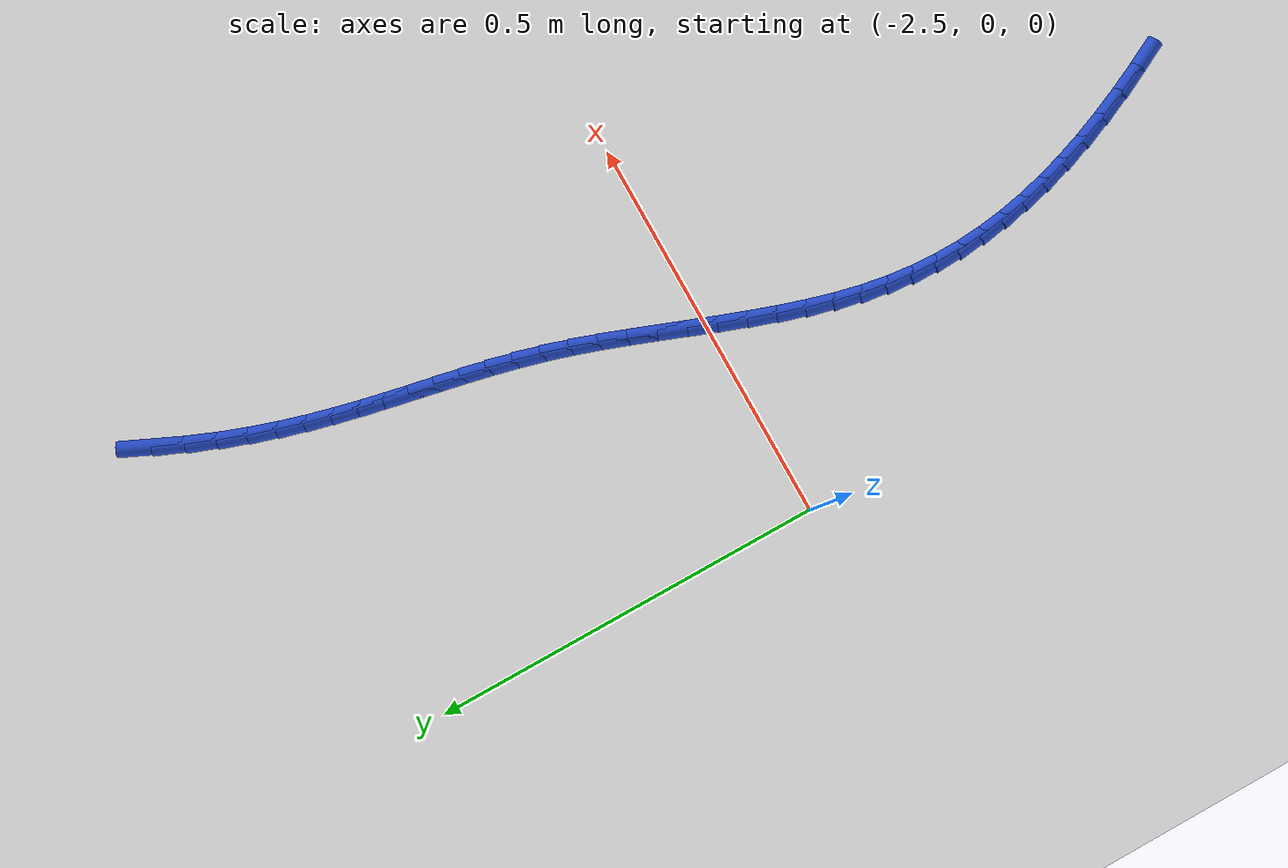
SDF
<sdf version="1.6">
 <world name="default">
  <model name="ground_plane">
   <static>1</static>
   <link name="link">
    <collision name="collision">
     <geometry><plane><normal>0 0 1</normal><size>100 100</size></plane></geometry>
     <surface><friction><ode><mu>100</mu><mu2>50</mu2></ode></friction></surface>
    </collision>
    <visual name="visual">
     <cast_shadows>0</cast_shadows>
     <geometry><plane><normal>0 0 1</normal><size>100 100</size></plane></geometry>
     <material>
      <script><uri>file://media/materials/scripts/gazebo.material</uri><name>Gazebo/WhiteGlow</name></script>
     </material>
    </visual>
   </link>
  </model>
  <model name="line">
   <link name="link_93">
    <pose>-2.048680601293942 0.6534377604602668 0.01 0 1.57 1.1435096109805696</pose>
    <collision name="collision">
     <geometry><cylinder><radius>0.01</radius><length>0.08</length></cylinder></geometry>
    </collision>
    <visual name="visual">
     <material>
      <script><name>Gazebo/Blue</name><uri>file://media/materials/scripts/gazebo.material</uri></script>
     </material>
     <geometry><cylinder><radius>0.01</radius><length>0.08</length></cylinder></geometry>
    </visual>
   </link>
   <link name="link_94">
    <pose>-2.0661149400563668 0.6151492377625225 0.01 0 1.57 1.1829929546160824</pose>
    <collision name="collision">
     <geometry><cylinder><radius>0.01</radius><length>0.08</length></cylinder></geometry>
    </collision>
    <visual name="visual">
     <material>
      <script><name>Gazebo/Blue</name><uri>file://media/materials/scripts/gazebo.material</uri></script>
     </material>
     <geometry><cylinder><radius>0.01</radius><length>0.08</length></cylinder></geometry>
    </visual>
   </link>
   <link name="link_95">
    <pose>-2.081218492870159 0.5781750808085175 0.01 0 1.57 1.221299365758287</pose>
    <collision name="collision">
     <geometry><cylinder><radius>0.01</radius><length>0.08</length></cylinder></geometry>
    </collision>
    <visual name="visual">
     <material>
      <script><name>Gazebo/Blue</name><uri>file://media/materials/scripts/gazebo.material</uri></script>
     </material>
     <geometry><cylinder><radius>0.01</radius><length>0.08</length></cylinder></geometry>
    </visual>
   </link>
   <link name="link_96">
    <pose>-2.094265895939435 0.5423756635894887 0.01 0 1.57 1.2574104522110585</pose>
    <collision name="collision">
     <geometry><cylinder><radius>0.01</radius><length>0.08</length></cylinder></geometry>
    </collision>
    <visual name="visual">
     <material>
      <script><name>Gazebo/Blue</name><uri>file://media/materials/scripts/gazebo.material</uri></script>
     </material>
     <geometry><cylinder><radius>0.01</radius><length>0.08</length></cylinder></geometry>
    </visual>
   </link>
   <link name="link_97">
    <pose>-2.105531785468313 0.5076113600966753 0.01 0 1.57 1.2902540589532554</pose>
    <collision name="collision">
     <geometry><cylinder><radius>0.01</radius><length>0.08</length></cylinder></geometry>
    </collision>
    <visual name="visual">
     <material>
      <script><name>Gazebo/Blue</name><uri>file://media/materials/scripts/gazebo.material</uri></script>
     </material>
     <geometry><cylinder><radius>0.01</radius><length>0.08</length></cylinder></geometry>
    </visual>
   </link>
   <link name="link_98">
    <pose>-2.115290797660909 0.4737425443213146 0.01 0 1.57 1.318766141046801</pose>
    <collision name="collision">
     <geometry><cylinder><radius>0.01</radius><length>0.08</length></cylinder></geometry>
    </collision>
    <visual name="visual">
     <material>
      <script><name>Gazebo/Blue</name><uri>file://media/materials/scripts/gazebo.material</uri></script>
     </material>
     <geometry><cylinder><radius>0.01</radius><length>0.08</length></cylinder></geometry>
    </visual>
   </link>
   <link name="link_99">
    <pose>-2.1238175687213436 0.44062959025464465 0.01 0 1.57 1.3419555309464875</pose>
    <collision name="collision">
     <geometry><cylinder><radius>0.01</radius><length>0.08</length></cylinder></geometry>
    </collision>
    <visual name="visual">
     <material>
      <script><name>Gazebo/Blue</name><uri>file://media/materials/scripts/gazebo.material</uri></script>
     </material>
     <geometry><cylinder><radius>0.01</radius><length>0.08</length></cylinder></geometry>
    </visual>
   </link>
   <link name="link_100">
    <pose>-2.131386734853732 0.40813287188790426 0.01 0 1.57 1.3589642262570858</pose>
    <collision name="collision">
     <geometry><cylinder><radius>0.01</radius><length>0.08</length></cylinder></geometry>
    </collision>
    <visual name="visual">
     <material>
      <script><name>Gazebo/Blue</name><uri>file://media/materials/scripts/gazebo.material</uri></script>
     </material>
     <geometry><cylinder><radius>0.01</radius><length>0.08</length></cylinder></geometry>
    </visual>
   </link>
   <link name="link_101">
    <pose>-2.1382729322621934 0.3761127632123308 0.01 0 1.57 1.369118031871345</pose>
    <collision name="collision">
     <geometry><cylinder><radius>0.01</radius><length>0.08</length></cylinder></geometry>
    </collision>
    <visual name="visual">
     <material>
      <script><name>Gazebo/Blue</name><uri>file://media/materials/scripts/gazebo.material</uri></script>
     </material>
     <geometry><cylinder><radius>0.01</radius><length>0.08</length></cylinder></geometry>
    </visual>
   </link>
   <link name="link_102">
    <pose>-2.144750797150844 0.34442963821916306 0.01 0 1.57 1.3719653937369343</pose>
    <collision name="collision">
     <geometry><cylinder><radius>0.01</radius><length>0.08</length></cylinder></geometry>
    </collision>
    <visual name="visual">
     <material>
      <script><name>Gazebo/Blue</name><uri>file://media/materials/scripts/gazebo.material</uri></script>
     </material>
     <geometry><cylinder><radius>0.01</radius><length>0.08</length></cylinder></geometry>
    </visual>
   </link>
   <link name="link_103">
    <pose>-2.151094965723803 0.31294387089963843 0.01 0 1.57 1.3673045558085057</pose>
    <collision name="collision">
     <geometry><cylinder><radius>0.01</radius><length>0.08</length></cylinder></geometry>
    </collision>
    <visual name="visual">
     <material>
      <script><name>Gazebo/Blue</name><uri>file://media/materials/scripts/gazebo.material</uri></script>
     </material>
     <geometry><cylinder><radius>0.01</radius><length>0.08</length></cylinder></geometry>
    </visual>
   </link>
   <link name="link_104">
    <pose>-2.1575800741851876 0.28151583524499585 0.01 0 1.57 1.355199756811104</pose>
    <collision name="collision">
     <geometry><cylinder><radius>0.01</radius><length>0.08</length></cylinder></geometry>
    </collision>
    <visual name="visual">
     <material>
      <script><name>Gazebo/Blue</name><uri>file://media/materials/scripts/gazebo.material</uri></script>
     </material>
     <geometry><cylinder><radius>0.01</radius><length>0.08</length></cylinder></geometry>
    </visual>
   </link>
   <link name="link_105">
    <pose>-2.164480758739115 0.2500059052464725 0.01 0 1.57 1.3359860354945523</pose>
    <collision name="collision">
     <geometry><cylinder><radius>0.01</radius><length>0.08</length></cylinder></geometry>
    </collision>
    <visual name="visual">
     <material>
      <script><name>Gazebo/Blue</name><uri>file://media/materials/scripts/gazebo.material</uri></script>
     </material>
     <geometry><cylinder><radius>0.01</radius><length>0.08</length></cylinder></geometry>
    </visual>
   </link>
   <link name="link_106">
    <pose>-2.1720716555897024 0.21827445489530742 0.01 0 1.57 1.3102602767623286</pose>
    <collision name="collision">
     <geometry><cylinder><radius>0.01</radius><length>0.08</length></cylinder></geometry>
    </collision>
    <visual name="visual">
     <material>
      <script><name>Gazebo/Blue</name><uri>file://media/materials/scripts/gazebo.material</uri></script>
     </material>
     <geometry><cylinder><radius>0.01</radius><length>0.08</length></cylinder></geometry>
    </visual>
   </link>
   <link name="link_107">
    <pose>-2.1806274009410687 0.18618185818273822 0.01 0 1.57 1.279043844673671</pose>
    <collision name="collision">
     <geometry><cylinder><radius>0.01</radius><length>0.08</length></cylinder></geometry>
    </collision>
    <visual name="visual">
     <material>
      <script><name>Gazebo/Blue</name><uri>file://media/materials/scripts/gazebo.material</uri></script>
     </material>
     <geometry><cylinder><radius>0.01</radius><length>0.08</length></cylinder></geometry>
    </visual>
   </link>
   <link name="link_108">
    <pose>-2.1904149992584925 0.15359154637254485 0.01 0 1.57 1.249385897282949</pose>
    <collision name="collision">
     <geometry><cylinder><radius>0.01</radius><length>0.08</length></cylinder></geometry>
    </collision>
    <visual name="visual">
     <material>
      <script><name>Gazebo/Blue</name><uri>file://media/materials/scripts/gazebo.material</uri></script>
     </material>
     <geometry><cylinder><radius>0.01</radius><length>0.08</length></cylinder></geometry>
    </visual>
   </link>
   <link name="link_109">
    <pose>-2.201442811405012 0.1204705632865438 0.01 0 1.57 1.2284119063351966</pose>
    <collision name="collision">
     <geometry><cylinder><radius>0.01</radius><length>0.08</length></cylinder></geometry>
    </collision>
    <visual name="visual">
     <material>
      <script><name>Gazebo/Blue</name><uri>file://media/materials/scripts/gazebo.material</uri></script>
     </material>
     <geometry><cylinder><radius>0.01</radius><length>0.08</length></cylinder></geometry>
    </visual>
   </link>
   <link name="link_110">
    <pose>-2.213403697291524 0.0869123423437836 0.01 0 1.57 1.2157220505712882</pose>
    <collision name="collision">
     <geometry><cylinder><radius>0.01</radius><length>0.08</length></cylinder></geometry>
    </collision>
    <visual name="visual">
     <material>
      <script><name>Gazebo/Blue</name><uri>file://media/materials/scripts/gazebo.material</uri></script>
     </material>
     <geometry><cylinder><radius>0.01</radius><length>0.08</length></cylinder></geometry>
    </visual>
   </link>
   <link name="link_111">
    <pose>-2.2259713726794996 0.05301798610446548 0.01 0 1.57 1.2107506115713909</pose>
    <collision name="collision">
     <geometry><cylinder><radius>0.01</radius><length>0.08</length></cylinder></geometry>
    </collision>
    <visual name="visual">
     <material>
      <script><name>Gazebo/Blue</name><uri>file://media/materials/scripts/gazebo.material</uri></script>
     </material>
     <geometry><cylinder><radius>0.01</radius><length>0.08</length></cylinder></geometry>
    </visual>
   </link>
   <link name="link_112">
    <pose>-2.23881955333041 0.018888597128788764 0.01 0 1.57 1.2132119847075964</pose>
    <collision name="collision">
     <geometry><cylinder><radius>0.01</radius><length>0.08</length></cylinder></geometry>
    </collision>
    <visual name="visual">
     <material>
      <script><name>Gazebo/Blue</name><uri>file://media/materials/scripts/gazebo.material</uri></script>
     </material>
     <geometry><cylinder><radius>0.01</radius><length>0.08</length></cylinder></geometry>
    </visual>
   </link>
   <link name="link_113">
    <pose>-2.2516219550057244 -0.015374722023045467 0.01 0 1.57 1.2230812624116694</pose>
    <collision name="collision">
     <geometry><cylinder><radius>0.01</radius><length>0.08</length></cylinder></geometry>
    </collision>
    <visual name="visual">
     <material>
      <script><name>Gazebo/Blue</name><uri>file://media/materials/scripts/gazebo.material</uri></script>
     </material>
     <geometry><cylinder><radius>0.01</radius><length>0.08</length></cylinder></geometry>
    </visual>
   </link>
   <link name="link_114">
    <pose>-2.2640522934669165 -0.049670868790837805 0.01 0 1.57 1.240584705505931</pose>
    <collision name="collision">
     <geometry><cylinder><radius>0.01</radius><length>0.08</length></cylinder></geometry>
    </collision>
    <visual name="visual">
     <material>
      <script><name>Gazebo/Blue</name><uri>file://media/materials/scripts/gazebo.material</uri></script>
     </material>
     <geometry><cylinder><radius>0.01</radius><length>0.08</length></cylinder></geometry>
    </visual>
   </link>
   <link name="link_115">
    <pose>-2.275784284475455 -0.08389874061438721 0.01 0 1.57 1.2661983034683275</pose>
    <collision name="collision">
     <geometry><cylinder><radius>0.01</radius><length>0.08</length></cylinder></geometry>
    </collision>
    <visual name="visual">
     <material>
      <script><name>Gazebo/Blue</name><uri>file://media/materials/scripts/gazebo.material</uri></script>
     </material>
     <geometry><cylinder><radius>0.01</radius><length>0.08</length></cylinder></geometry>
    </visual>
   </link>
   <link name="link_116">
    <pose>-2.2864916437928122 -0.11795723493349386 0.01 0 1.57 1.300649655097727</pose>
    <collision name="collision">
     <geometry><cylinder><radius>0.01</radius><length>0.08</length></cylinder></geometry>
    </collision>
    <visual name="visual">
     <material>
      <script><name>Gazebo/Blue</name><uri>file://media/materials/scripts/gazebo.material</uri></script>
     </material>
     <geometry><cylinder><radius>0.01</radius><length>0.08</length></cylinder></geometry>
    </visual>
   </link>
   <link name="link_117">
    <pose>-2.295848087180458 -0.1517452491879583 0.01 0 1.57 1.3449137137191587</pose>
    <collision name="collision">
     <geometry><cylinder><radius>0.01</radius><length>0.08</length></cylinder></geometry>
    </collision>
    <visual name="visual">
     <material>
      <script><name>Gazebo/Blue</name><uri>file://media/materials/scripts/gazebo.material</uri></script>
     </material>
     <geometry><cylinder><radius>0.01</radius><length>0.08</length></cylinder></geometry>
    </visual>
   </link>
   <link name="link_118">
    <pose>-2.303527330399865 -0.18516168081757875 0.01 0 1.57 1.399405134372595</pose>
    <collision name="collision">
     <geometry><cylinder><radius>0.01</radius><length>0.08</length></cylinder></geometry>
    </collision>
    <visual name="visual">
     <material>
      <script><name>Gazebo/Blue</name><uri>file://media/materials/scripts/gazebo.material</uri></script>
     </material>
     <geometry><cylinder><radius>0.01</radius><length>0.08</length></cylinder></geometry>
    </visual>
   </link>
   <link name="link_119">
    <pose>-2.309232597473054 -0.21812307939023648 0.01 0 1.57 1.4588867162256873</pose>
    <collision name="collision">
     <geometry><cylinder><radius>0.01</radius><length>0.08</length></cylinder></geometry>
    </collision>
    <visual name="visual">
     <material>
      <script><name>Gazebo/Blue</name><uri>file://media/materials/scripts/gazebo.material</uri></script>
     </material>
     <geometry><cylinder><radius>0.01</radius><length>0.08</length></cylinder></geometry>
    </visual>
   </link>
   <link name="link_120">
    <pose>-2.3128913300832052 -0.25068012365658443 0.01 0 1.57 1.5199309446468716</pose>
    <collision name="collision">
     <geometry><cylinder><radius>0.01</radius><length>0.08</length></cylinder></geometry>
    </collision>
    <visual name="visual">
     <material>
      <script><name>Gazebo/Blue</name><uri>file://media/materials/scripts/gazebo.material</uri></script>
     </material>
     <geometry><cylinder><radius>0.01</radius><length>0.08</length></cylinder></geometry>
    </visual>
   </link>
   <link name="link_121">
    <pose>-2.314533916059764 -0.2829450757519057 0.01 0 1.57 -1.5601179864456995</pose>
    <collision name="collision">
     <geometry><cylinder><radius>0.01</radius><length>0.08</length></cylinder></geometry>
    </collision>
    <visual name="visual">
     <material>
      <script><name>Gazebo/Blue</name><uri>file://media/materials/scripts/gazebo.material</uri></script>
     </material>
     <geometry><cylinder><radius>0.01</radius><length>0.08</length></cylinder></geometry>
    </visual>
   </link>
   <link name="link_122">
    <pose>-2.314191283730419 -0.3150305211427843 0.01 0 1.57 -1.4991817124689053</pose>
    <collision name="collision">
     <geometry><cylinder><radius>0.01</radius><length>0.08</length></cylinder></geometry>
    </collision>
    <visual name="visual">
     <material>
      <script><name>Gazebo/Blue</name><uri>file://media/materials/scripts/gazebo.material</uri></script>
     </material>
     <geometry><cylinder><radius>0.01</radius><length>0.08</length></cylinder></geometry>
    </visual>
   </link>
   <link name="link_123">
    <pose>-2.3118943614228598 -0.34704904529580227 0.01 0 1.57 -1.4399287154190235</pose>
    <collision name="collision">
     <geometry><cylinder><radius>0.01</radius><length>0.08</length></cylinder></geometry>
    </collision>
    <visual name="visual">
     <material>
      <script><name>Gazebo/Blue</name><uri>file://media/materials/scripts/gazebo.material</uri></script>
     </material>
     <geometry><cylinder><radius>0.01</radius><length>0.08</length></cylinder></geometry>
    </visual>
   </link>
   <link name="link_124">
    <pose>-2.3076740774647755 -0.3791132336775434 0.01 0 1.57 -1.3833203254977475</pose>
    <collision name="collision">
     <geometry><cylinder><radius>0.01</radius><length>0.08</length></cylinder></geometry>
    </collision>
    <visual name="visual">
     <material>
      <script><name>Gazebo/Blue</name><uri>file://media/materials/scripts/gazebo.material</uri></script>
     </material>
     <geometry><cylinder><radius>0.01</radius><length>0.08</length></cylinder></geometry>
    </visual>
   </link>
   <link name="link_125">
    <pose>-2.3015613601838574 -0.4113356717545914 0.01 0 1.57 -1.3301409114101905</pose>
    <collision name="collision">
     <geometry><cylinder><radius>0.01</radius><length>0.08</length></cylinder></geometry>
    </collision>
    <visual name="visual">
     <material>
      <script><name>Gazebo/Blue</name><uri>file://media/materials/scripts/gazebo.material</uri></script>
     </material>
     <geometry><cylinder><radius>0.01</radius><length>0.08</length></cylinder></geometry>
    </visual>
   </link>
   <link name="link_126">
    <pose>-2.2935871379077937 -0.44382894499353037 0.01 0 1.57 -1.2809646634919447</pose>
    <collision name="collision">
     <geometry><cylinder><radius>0.01</radius><length>0.08</length></cylinder></geometry>
    </collision>
    <visual name="visual">
     <material>
      <script><name>Gazebo/Blue</name><uri>file://media/materials/scripts/gazebo.material</uri></script>
     </material>
     <geometry><cylinder><radius>0.01</radius><length>0.08</length></cylinder></geometry>
    </visual>
   </link>
   <link name="link_127">
    <pose>-2.283782338964275 -0.47670563886094197 0.01 0 1.57 -1.2361516692505967</pose>
    <collision name="collision">
     <geometry><cylinder><radius>0.01</radius><length>0.08</length></cylinder></geometry>
    </collision>
    <visual name="visual">
     <material>
      <script><name>Gazebo/Blue</name><uri>file://media/materials/scripts/gazebo.material</uri></script>
     </material>
     <geometry><cylinder><radius>0.01</radius><length>0.08</length></cylinder></geometry>
    </visual>
   </link>
   <link name="link_128">
    <pose>-2.27217789168099 -0.5100783388234105 0.01 0 1.57 -1.195866962794448</pose>
    <collision name="collision">
     <geometry><cylinder><radius>0.01</radius><length>0.08</length></cylinder></geometry>
    </collision>
    <visual name="visual">
     <material>
      <script><name>Gazebo/Blue</name><uri>file://media/materials/scripts/gazebo.material</uri></script>
     </material>
     <geometry><cylinder><radius>0.01</radius><length>0.08</length></cylinder></geometry>
    </visual>
   </link>
   <link name="link_129">
    <pose>-2.258804724385629 -0.544059630347519 0.01 0 1.57 -1.1601134299046134</pose>
    <collision name="collision">
     <geometry><cylinder><radius>0.01</radius><length>0.08</length></cylinder></geometry>
    </collision>
    <visual name="visual">
     <material>
      <script><name>Gazebo/Blue</name><uri>file://media/materials/scripts/gazebo.material</uri></script>
     </material>
     <geometry><cylinder><radius>0.01</radius><length>0.08</length></cylinder></geometry>
    </visual>
   </link>
   <link name="link_130">
    <pose>-2.2436937654058817 -0.5787620988998513 0.01 0 1.57 -1.1287698812553322</pose>
    <collision name="collision">
     <geometry><cylinder><radius>0.01</radius><length>0.08</length></cylinder></geometry>
    </collision>
    <visual name="visual">
     <material>
      <script><name>Gazebo/Blue</name><uri>file://media/materials/scripts/gazebo.material</uri></script>
     </material>
     <geometry><cylinder><radius>0.01</radius><length>0.08</length></cylinder></geometry>
    </visual>
   </link>
   <link name="link_131">
    <pose>-2.2268759430694365 -0.6142983299469914 0.01 0 1.57 -1.1016278717382515</pose>
    <collision name="collision">
     <geometry><cylinder><radius>0.01</radius><length>0.08</length></cylinder></geometry>
    </collision>
    <visual name="visual">
     <material>
      <script><name>Gazebo/Blue</name><uri>file://media/materials/scripts/gazebo.material</uri></script>
     </material>
     <geometry><cylinder><radius>0.01</radius><length>0.08</length></cylinder></geometry>
    </visual>
   </link>
  </model>
 </world>
</sdf>
